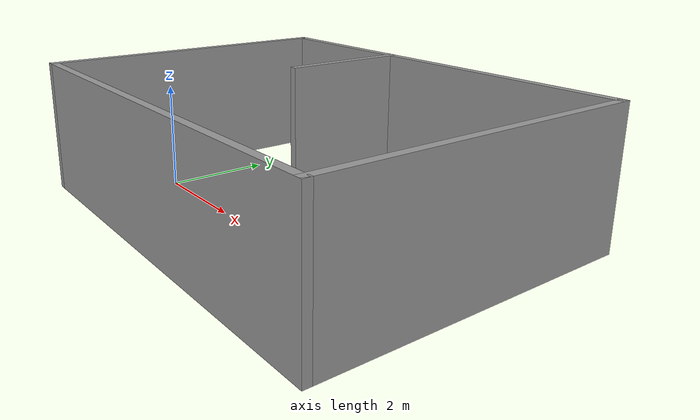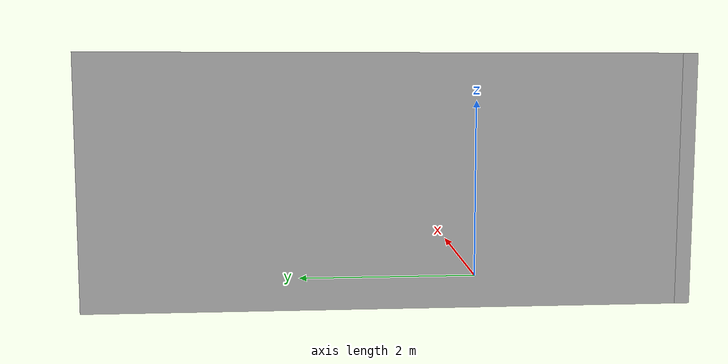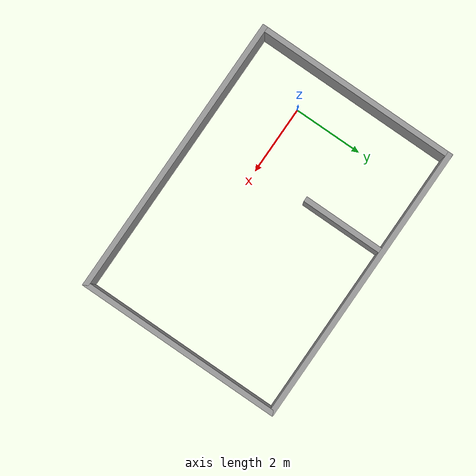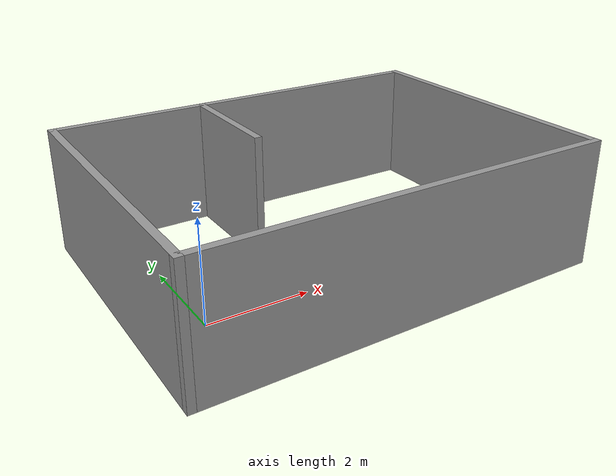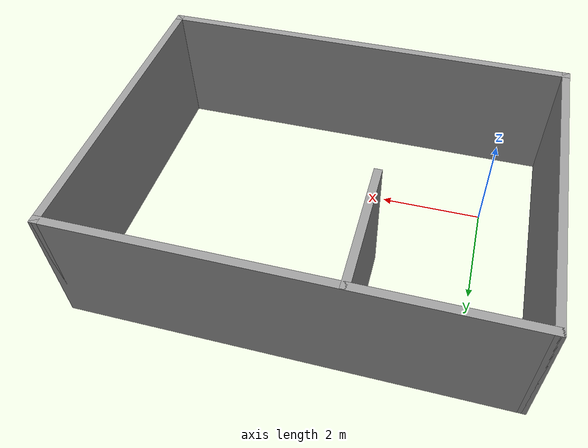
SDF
<?xml version='1.0'?>
<sdf version='1.7'>
  <model name='room'>
    <pose>2.9465 1.06472 0 0 -0 0</pose>
    <link name='Wall_10'>
      <collision name='Wall_10_Collision'>
        <geometry>
          <box>
            <size>6 0.15 2.5</size>
          </box>
        </geometry>
        <pose>0 0 1.25 0 -0 0</pose>
      </collision>
      <visual name='Wall_10_Visual'>
        <pose>0 0 1.25 0 -0 0</pose>
        <geometry>
          <box>
            <size>6 0.15 2.5</size>
          </box>
        </geometry>
        <material>
          <script>
            <uri>file://media/materials/scripts/gazebo.material</uri>
            <name>Gazebo/Grey</name>
          </script>
          <ambient>1 1 1 1</ambient>
        </material>
        <meta>
          <layer>0</layer>
        </meta>
      </visual>
      <pose>4.05 0 0 0 -0 -1.5708</pose>
    </link>
    <link name='Wall_11'>
      <collision name='Wall_11_Collision'>
        <geometry>
          <box>
            <size>8.25 0.15 2.5</size>
          </box>
        </geometry>
        <pose>0 0 1.25 0 -0 0</pose>
      </collision>
      <visual name='Wall_11_Visual'>
        <pose>0 0 1.25 0 -0 0</pose>
        <geometry>
          <box>
            <size>8.25 0.15 2.5</size>
          </box>
        </geometry>
        <material>
          <script>
            <uri>file://media/materials/scripts/gazebo.material</uri>
            <name>Gazebo/Grey</name>
          </script>
          <ambient>1 1 1 1</ambient>
        </material>
        <meta>
          <layer>0</layer>
        </meta>
      </visual>
      <pose>0 -2.925 0 0 -0 3.14159</pose>
    </link>
    <link name='Wall_15'>
      <collision name='Wall_15_Collision'>
        <geometry>
          <box>
            <size>2.5 0.15 2.5</size>
          </box>
        </geometry>
        <pose>0 0 1.25 0 -0 0</pose>
      </collision>
      <visual name='Wall_15_Visual'>
        <pose>0 0 1.25 0 -0 0</pose>
        <geometry>
          <box>
            <size>2.5 0.15 2.5</size>
          </box>
        </geometry>
        <material>
          <script>
            <uri>file://media/materials/scripts/gazebo.material</uri>
            <name>Gazebo/Grey</name>
          </script>
          <ambient>1 1 1 1</ambient>
        </material>
        <meta>
          <layer>0</layer>
        </meta>
      </visual>
      <pose>-1.0013 1.74124 0 0 -0 -1.5708</pose>
    </link>
    <link name='Wall_7'>
      <collision name='Wall_7_Collision'>
        <geometry>
          <box>
            <size>6 0.15 2.5</size>
          </box>
        </geometry>
        <pose>0 0 1.25 0 -0 0</pose>
      </collision>
      <visual name='Wall_7_Visual'>
        <pose>0 0 1.25 0 -0 0</pose>
        <geometry>
          <box>
            <size>6 0.15 2.5</size>
          </box>
        </geometry>
        <material>
          <script>
            <uri>file://media/materials/scripts/gazebo.material</uri>
            <name>Gazebo/Grey</name>
          </script>
          <ambient>1 1 1 1</ambient>
        </material>
        <meta>
          <layer>0</layer>
        </meta>
      </visual>
      <pose>-4.05 0 0 0 -0 1.5708</pose>
    </link>
    <link name='Wall_9'>
      <collision name='Wall_9_Collision'>
        <geometry>
          <box>
            <size>8.25 0.15 2.5</size>
          </box>
        </geometry>
        <pose>0 0 1.25 0 -0 0</pose>
      </collision>
      <visual name='Wall_9_Visual'>
        <pose>0 0 1.25 0 -0 0</pose>
        <geometry>
          <box>
            <size>8.25 0.15 2.5</size>
          </box>
        </geometry>
        <material>
          <script>
            <uri>file://media/materials/scripts/gazebo.material</uri>
            <name>Gazebo/Grey</name>
          </script>
          <ambient>1 1 1 1</ambient>
        </material>
        <meta>
          <layer>0</layer>
        </meta>
      </visual>
      <pose>0 2.925 0 0 -0 0</pose>
    </link>
    <static>1</static>
  </model>
</sdf>
